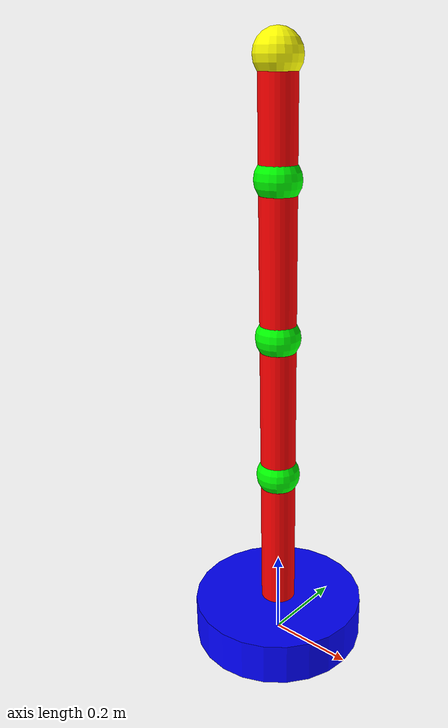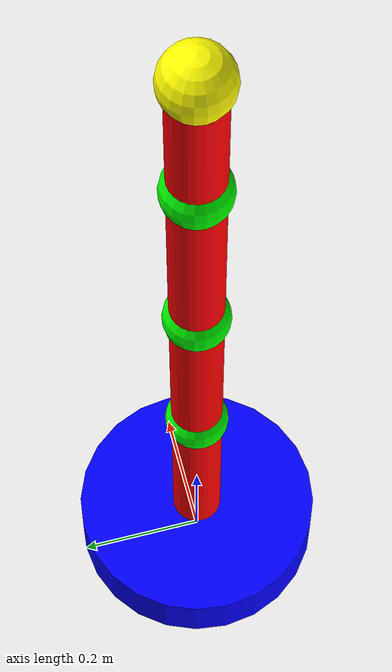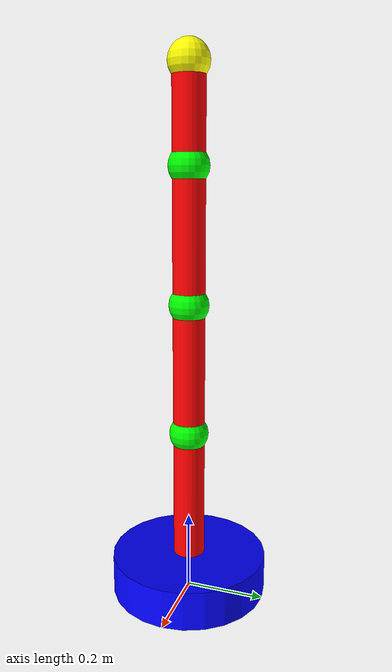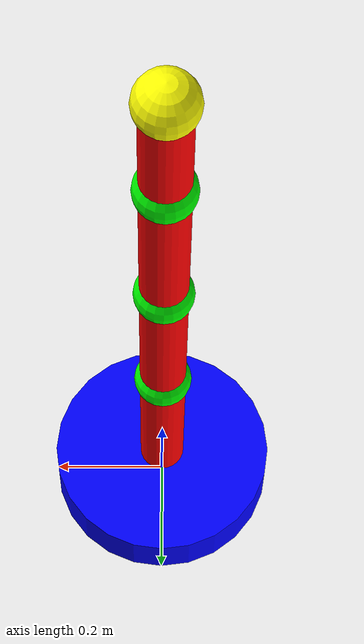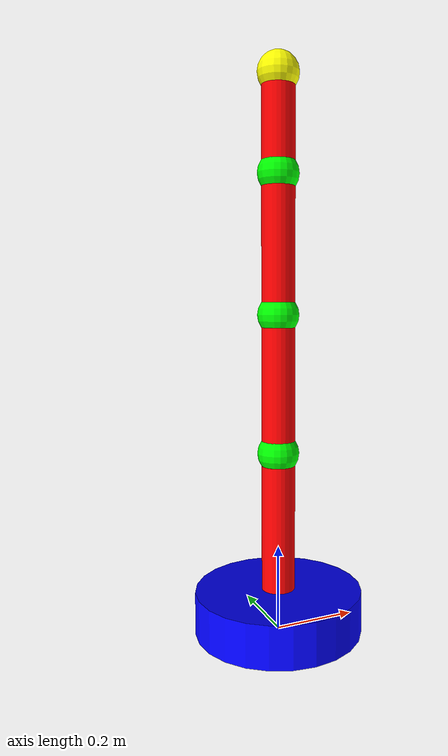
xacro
<?xml version="1.0"?>

<!--
  CS22B1090
  Shubh Khandelwal
-->

<robot xmlns:xacro="http://www.ros.org/wiki/xacro">

  <xacro:include filename="materials.xacro"/>
  <xacro:include filename="cylinder.xacro"/>
  <xacro:include filename="sphere.xacro"/>

  <link name="base_link"/>

  <xacro:CYLINDER
  link_name="link_0"
  link_material="blue"
  link_density="7850"
  link_length="0.1"
  link_radius="0.2"
  />

  <xacro:CYLINDER
  link_name="link_1"
  link_material="red"
  link_density="2700"
  link_length="0.4"
  link_radius="0.04"
  />

  <xacro:SPHERE
  link_name="link_2"
  link_material="green"
  link_density="1050"
  link_radius="0.05"
  link_centre="0.43"
  />

  <xacro:CYLINDER
  link_name="link_3"
  link_material="red"
  link_density="2700"
  link_length="0.3"
  link_radius="0.04"
  />

  <xacro:SPHERE
  link_name="link_4"
  link_material="green"
  link_density="1050"
  link_radius="0.05"
  link_centre="0.33"
  />

  <xacro:CYLINDER
  link_name="link_5"
  link_material="red"
  link_density="2700"
  link_length="0.3"
  link_radius="0.04"
  />

  <xacro:SPHERE
  link_name="link_6"
  link_material="green"
  link_density="1050"
  link_radius="0.05"
  link_centre="0.33"
  />

  <xacro:CYLINDER
  link_name="link_7"
  link_material="red"
  link_density="2700"
  link_length="0.2"
  link_radius="0.04"
  />

  <xacro:SPHERE
  link_name="link_8"
  link_material="yellow"
  link_density="1050"
  link_radius="0.05"
  link_centre="0.23"
  />

  <joint name="joint_base" type="fixed">
    <parent link="base_link"/>
    <child link="link_0"/>
    <origin xyz="0 0 0" rpy="0 0 0"/>
  </joint>

  <joint name="joint_01" type="continuous">
    <parent link="link_0"/>
    <child link="link_1"/>
    <origin xyz="0 0 0" rpy="0 0 0"/>
    <axis xyz="0 0 1"/>
  </joint>

  <joint name="joint_12" type="fixed">
    <parent link="link_1"/>
    <child link="link_2"/>
    <origin xyz="0 0 0" rpy="0 0 0"/>
  </joint>

  <joint name="joint_23" type="revolute">
    <parent link="link_2"/>
    <child link="link_3"/>
    <origin xyz="0 0 0.43" rpy="0 0 0"/>
    <axis xyz="0 1 0"/>
    <limit lower="0" upper="1.571" effort="10" velocity="1.0"/>
  </joint>

  <joint name="joint_34" type="fixed">
    <parent link="link_3"/>
    <child link="link_4"/>
    <origin xyz="0 0 0" rpy="0 0 0"/>
  </joint>

  <joint name="joint_45" type="revolute">
    <parent link="link_4"/>
    <child link="link_5"/>
    <origin xyz="0 0 0.33" rpy="0 0 0"/>
    <axis xyz="0 1 0"/>
    <limit lower="0" upper="1.571" effort="10" velocity="1.0"/>
  </joint>

  <joint name="joint_56" type="fixed">
    <parent link="link_5"/>
    <child link="link_6"/>
    <origin xyz="0 0 0" rpy="0 0 0"/>
  </joint>

  <joint name="joint_67" type="revolute">
    <parent link="link_6"/>
    <child link="link_7"/>
    <origin xyz="0 0 0.33" rpy="0 0 0"/>
    <axis xyz="0 1 0"/>
    <limit lower="0" upper="1.571" effort="10" velocity="1.0"/>
  </joint>

  <joint name="joint_78" type="fixed">
    <parent link="link_7"/>
    <child link="link_8"/>
    <origin xyz="0 0 0" rpy="0 0 0"/>
  </joint>

</robot>

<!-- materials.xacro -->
<!--
  CS22B1090
  Shubh Khandelwal
-->

<robot xmlns:xacro="http://www.ros.org/wiki/xacro">

  <material name="red">
    <color rgba="1.0 0.0 0.0 1.0"/>
  </material>

  <material name="green">
    <color rgba="0.0 1.0 0.0 1.0"/>
  </material>

  <material name="blue">
    <color rgba="0.0 0.0 1.0 1.0"/>
  </material>

  <material name="yellow">
    <color rgba="1.0 1.0 0.0 1.0"/>
  </material>

</robot>

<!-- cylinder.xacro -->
<!--
  CS22B1090
  Shubh Khandelwal
-->

<robot xmlns:xacro="http://www.ros.org/wiki/xacro">

  <xacro:macro name="CYLINDER" params="link_density link_length link_material link_name link_radius">
    <link name="${link_name}">
      <visual>
        <origin xyz="0 0 ${link_length / 2}" rpy="0 0 0"/>
        <geometry>
          <cylinder length="${link_length}" radius="${link_radius}"/>
        </geometry>
        <material name="${link_material}"/>
      </visual>
      <collision>
        <geometry>
          <cylinder length="${link_length}" radius="${link_radius}"/>
        </geometry>
      </collision>
      <inertial>
        <mass value="${link_density * 3.142 * link_radius * link_radius * link_length}"/>
        <origin xyz="0 0 ${link_length / 2}" rpy="0 0 0"/>
        <inertia
        ixx="${(3.142 / 12.0) * (3 * link_radius * link_radius + link_length * link_length) * link_radius * link_radius * link_length * link_density}"
        ixy="0.0"
        ixz="0.0"
        iyy="${(3.142 / 12.0) * (3 * link_radius * link_radius + link_length * link_length) * link_radius * link_radius * link_length * link_density}"
        iyz="0.0"
        izz="${(3.142 / 2.0) * link_radius * link_radius * link_radius * link_radius * link_length * link_density}"
        />
      </inertial>
    </link>
    <gazebo reference="${link_name}">
      <selfCollide>false</selfCollide>
      <mu1 value="0.05"/>
      <mu2 value="0.05"/>
    </gazebo>
  </xacro:macro>

</robot>

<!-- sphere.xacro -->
<!--
  CS22B1090
  Shubh Khandelwal
-->

<robot xmlns:xacro="http://www.ros.org/wiki/xacro">

  <xacro:macro name="SPHERE" params="link_centre link_density link_material link_name link_radius">
    <link name="${link_name}">
      <visual>
        <origin xyz="0 0 ${link_centre}" rpy="0 0 0"/>
        <geometry>
          <sphere radius="${link_radius}"/>
        </geometry>
        <material name="${link_material}"/>
      </visual>
      <collision>
        <geometry>
          <sphere radius="${link_radius}"/>
        </geometry>
      </collision>
      <inertial>
        <mass value="${link_density * (4.0 * 3.142 / 3.0) * link_radius * link_radius * link_radius}"/>
        <origin xyz="0 0 ${link_centre}" rpy="0 0 0"/>
        <inertia
        ixx="${(8 * 3.142 / 15.0) * link_radius * link_radius * link_radius * link_radius * link_radius * link_density}"
        ixy="0.0"
        ixz="0.0"
        iyy="${(8 * 3.142 / 15.0) * link_radius * link_radius * link_radius * link_radius * link_radius * link_density}"
        iyz="0.0"
        izz="${(8 * 3.142 / 15.0) * link_radius * link_radius * link_radius * link_radius * link_radius * link_density}"
        />
      </inertial>
    </link>
    <gazebo reference="${link_name}">
      <selfCollide>false</selfCollide>
      <mu1 value="0.05"/>
      <mu2 value="0.05"/>
    </gazebo>
  </xacro:macro>

</robot>
